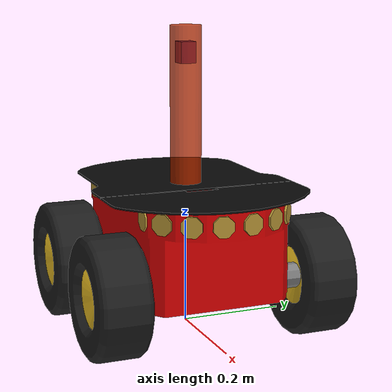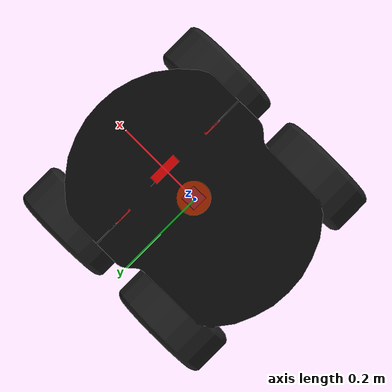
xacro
<?xml version="1.0"?>

<robot xmlns:sensor="http://playerstage.sourceforge.net/gazebo/xmlschema/#sensor"
       xmlns:controller="http://playerstage.sourceforge.net/gazebo/xmlschema/#controller"
       xmlns:interface="http://playerstage.sourceforge.net/gazebo/xmlschema/#interface"
       xmlns:xacro="http://ros.org/wiki/xacro"
name="pioneer3at">

    <xacro:property name="robot_namespace" value="$(arg robot_namespace)" />

    <!-- 惯性矩阵计算 -->
    <xacro:include filename="inertial_matrix.xacro" />
    <xacro:include filename="$(find p2os_urdf)/defs/pioneer3at_body.xacro"/>
    <!-- 给laser link添加3D雷达功能的实现 -->
    <!-- 给sensor_laser link添加2D激光雷达实现 -->
    <xacro:include filename="sensor_2D_laser.urdf.xacro" />

    <!-- Velodyne link -->
    <link name="velodyne">
        <!-- 定义 Velodyne 的形状和惯性等属性 -->
    </link>

    <!-- 父子关系 -->
    <joint name="support_to_velodyne" type="fixed">
        <parent link="support"/>
        <child link="velodyne"/>
        <!-- 设置子link相对于父link的位姿 -->
        <origin xyz="0 0 0.188" rpy="0 0 0"/>
    </joint>

    <xacro:p3at_front suffix="left" reflect="1"/>
    <xacro:p3at_front suffix="right" reflect="-1"/>
    <xacro:p3at_back suffix="left" reflect="1"/>
    <xacro:p3at_back suffix="right" reflect="-1"/>
    <xacro:p3at_gazebo_ext/>

</robot>

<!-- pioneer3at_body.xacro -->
<robot xmlns:sensor="http://playerstage.sourceforge.net/gazebo/xmlschema/#sensor"
       xmlns:controller="http://playerstage.sourceforge.net/gazebo/xmlschema/#controller"
       xmlns:interface="http://playerstage.sourceforge.net/gazebo/xmlschema/#interface"
       xmlns:xacro="http://ros.org/wiki/xacro"
>

<!-- Chassis -->
	<link name="base_link">
		<inertial>
			<mass value="10.0"/>
			<origin xyz="0 0 0.177"/>
			<inertia ixx="0.3338" ixy="0.0" ixz="0.0"
				 iyy="0.4783" iyz="0.0"
				 izz="0.3338"/>
		</inertial>
		<visual>
			<origin xyz="0 0 0.177" rpy="0 0 0"/>
			<geometry name="pioneer_geom">
				<mesh filename="package://p2os_urdf/meshes/p3at_meshes/chassis.stl"/>
			</geometry>
			<material name="ChassisRed">
				<color rgba="0.851 0.0 0.0 1.0"/>
			</material>
		</visual>
		<collision>
			<origin xyz="0 0 0.177" rpy="0 0 0"/>
				<geometry>
					<mesh filename="package://p2os_urdf/meshes/p3at_meshes/chassis.stl"/>
				</geometry>
		</collision>
	</link>
	<gazebo reference="base_link">
		<material value="Gazebo/Red"/>
	</gazebo>

<!-- Top -->
	<link name="top_plate">
		<inertial>
			<mass value="0.1"/>
			<origin xyz="-0.025 0 -0.223"/>
			<inertia ixx="1.0" ixy="0.0" ixz="0.0"
				 iyy="1.0" iyz="0.0"
 				izz="1.0"/>
		</inertial>
		<visual>
			<origin xyz="0 0 0" rpy="0 0 0"/>
			<geometry name="pioneer_geom">
				<mesh filename="package://p2os_urdf/meshes/p3at_meshes/top.stl"/>
			</geometry>
			<material name="TopBlack">
					<color rgba="0.038 0.038 0.038 1.0"/>
			</material>
		</visual>
		<collision>
			<origin xyz="0 0 0" rpy="0 0 0"/>
			<geometry>
				<box size="0 0 0"/>
			</geometry>
		</collision>
	</link>
	<gazebo reference="top_plate">
		<material value="Gazebo/Black"/>
	</gazebo>

	<joint name="base_top_joint" type="fixed">
		<origin xyz="0.003 0 0.274" rpy="0 0 0"/>
		<parent link="base_link"/>
		<child link="top_plate"/>
	</joint>

<!-- 3D lidar -->
    <!-- 雷达支架 -->
    <xacro:property name="support_length" value="0.30" /> <!-- 支架长度 -->
    <xacro:property name="support_radius" value="0.03" /> <!-- 支架半径 -->
    <xacro:property name="support_x" value="0.0" /> <!-- 支架安装的x坐标 -->
    <xacro:property name="support_y" value="0.0" /> <!-- 支架安装的y坐标 -->
    <xacro:property name="support_z" value="${support_length / 2}" /> <!-- 支架安装的z坐标:底盘高度 / 2 + 支架高度 / 2  -->
    <xacro:property name="support_m" value="0.02" /> <!-- 支架质量 -->

    <link name="support">
        <visual>
            <geometry>
                <cylinder radius="${support_radius}" length="${support_length}" />
            </geometry>
            <origin xyz="0.0 0.0 0.0" rpy="0.0 0.0 0.0" />
            <material name="red">
                <color rgba="0.8 0.2 0.0 0.8" />
            </material>
        </visual>

        <collision>
            <geometry>
                <cylinder radius="${support_radius}" length="${support_length}" />
            </geometry>
            <origin xyz="0.0 0.0 0.0" rpy="0.0 0.0 0.0" />
        </collision>

        <xacro:cylinder_inertial_matrix m="${support_m}" r="${support_radius}" h="${support_length}" />

    </link>

    <joint name="support2top_plate" type="fixed">
        <parent link="top_plate" />
        <child link="support" />
        <origin xyz="${support_x} ${support_y} ${support_z}" />
    </joint>

    <gazebo reference="support">
        <material>Gazebo/White</material>
    </gazebo>

    <!--2D Laser Scan-->
    <xacro:macro name="default_inertial" params="mass">
        <inertial>
          <mass value="${mass}"/>
          <inertia ixx="1.0" ixy="0.0" ixz="0.0" iyy="1.0" iyz="0.0" izz="1.0"/>
        </inertial>
      </xacro:macro>

    <material name="blue">
        <color rgba="0 0 0.8 1"/>
    </material>

    <xacro:property name="laser_size_x" value="0.03"/>
    <xacro:property name="laser_size_y" value="0.03"/>
    <xacro:property name="laser_size_z" value="0.04"/>
    <xacro:property name="laser_origin_x" value="0"/>
    <xacro:property name="laser_origin_y" value="0"/>
    <xacro:property name="laser_origin_z" value="${support_length / 3}"/>

    <link name="sensor_laser">
        <visual>
        <geometry>
            <box size="${laser_size_x} ${laser_size_y} ${laser_size_z}"/>
        </geometry>
        <material name="blue"/>
        </visual>
        <collision>
            <geometry>
                <box size="${laser_size_x} ${laser_size_y} ${laser_size_z}"/>
            </geometry>
        </collision>
        <xacro:default_inertial mass="0.02"/>
    </link>

    <joint name="sensor_laser_joint" type="fixed">
        <origin xyz="${laser_origin_x} ${laser_origin_y} ${laser_origin_z}" rpy="0 0 0" />
        <parent link="support"/>
        <child link="sensor_laser" />
    </joint>

<!-- Front + Back Sonar -->
	<link name="front_sonar">
		<inertial>
			<mass value="0.1"/>
			<origin xyz="0 0 0"/>
			<inertia ixx="1.0" ixy="0.0" ixz="0.0"
				 iyy="1.0" iyz="0.0" izz="1.0"/>
		</inertial>
		<visual>
			<origin xyz="0 0 0" rpy="0 0 0"/>
			<geometry name="pioneer_geom">
				<mesh filename="package://p2os_urdf/meshes/p3at_meshes/front_sonar.stl"/>
			</geometry>
			<material name="SonarYellow">
				<color rgba="0.715 0.583 0.210 1.0"/>
			</material>
		</visual>
		<collision>
			<origin xyz="0 0 0" rpy="0 0 0"/>
			<geometry>
				<box size="0 0 0"/>
			</geometry>
		</collision>
	</link>
	<gazebo reference="front_sonar">
		<material value="Gazebo/Yellow"/>
	</gazebo>

	<joint name="base_front_joint" type="fixed">
		<origin xyz="0.193 0 0.25" rpy="0 0 0"/>
		<parent link="base_link"/>
		<child link="front_sonar"/>
	</joint>

	<link name="back_sonar">
		<inertial>
			<mass value="0.1"/>
			<origin xyz="0 0 0"/>
			<inertia ixx="1.0" ixy="0.0" ixz="0.0"
				 iyy="1.0" iyz="0.0" izz="1.0"/>
		</inertial>
		<visual>
			<origin xyz="0 0 0" rpy="0 0 0"/>
			<geometry name="pioneer_geom">
				<mesh filename="package://p2os_urdf/meshes/p3at_meshes/back_sonar.stl"/>
			</geometry>
			<material name="SonarYellow">
				<color rgba="0.715 0.583 0.210 1.0"/>
			</material>
		</visual>
		<collision>
			<origin xyz="0 0 0" rpy="0 0 0"/>
			<geometry>
				<box size="0 0 0"/>
			</geometry>
		</collision>
	</link>
	<gazebo reference="back_sonar">
		<material value="Gazebo/Yellow"/>
	</gazebo>

	<joint name="base_back_joint" type="fixed">
		<origin xyz="-0.187 0 0.247" rpy="0 0 0"/>
		<parent link="base_link"/>
		<child link="back_sonar"/>
	</joint>

<!-- Front Axles + Wheels + Hubcaps -->
<xacro:macro name="p3at_front" params="suffix reflect">
	<link name="p3at_front_${suffix}_axle">
		<inertial>
			<mass value="0.1"/>
			<origin xyz="0 0 0"/>
			<inertia ixx="1.0" ixy="0.0" ixz="0.0"
				 iyy="1.0" iyz="0.0" izz="1.0"/>
  	 	</inertial>
	<visual>
		<origin xyz="0 0 0" rpy="0 0 0"/>
		<geometry name="pioneer_geom">
			<mesh filename="package://p2os_urdf/meshes/p3at_meshes/axle.stl"/>
		</geometry>
		<material name="AxleGrey">
			<color rgba="0.5 0.5 0.5 1"/>
		</material>
	</visual>
	<collision>
		<origin xyz="0 0 0" rpy="0 0 0"/>
		<geometry>
			<box size="0 0 0"/>
		</geometry>
	</collision>
	</link>
	<gazebo reference="p3at_front_${suffix}_axle">
		<material value="Gazebo/Grey"/>
	</gazebo>

	<joint name="base_front_${suffix}_axle_joint" type="fixed">
		<origin xyz="0.135 ${reflect*0.156} 0.111" rpy="0 0 0"/>
		<parent link="base_link"/>
		<child link="p3at_front_${suffix}_axle"/>
	</joint>

	<link name="p3at_front_${suffix}_hub">
		<inertial>
			<mass value="0.1"/>
			<origin xyz="0 0 0"/>
			<inertia ixx="1.0" ixy="0.0" ixz="0.0"
				 iyy="1.0" iyz="0.0" izz="1.0"/>
  	 	</inertial>
	<visual>
		<origin xyz="0 0 0" rpy="0 0 0"/>
		<geometry name="pioneer_geom">
			<mesh filename="package://p2os_urdf/meshes/p3at_meshes/${suffix}_hubcap.stl"/>
		</geometry>
		<material name="HubcapYellow">
			<color rgba="1.0 0.811 0.151 1.0"/>
		</material>
	</visual>
	<collision>
		<origin xyz="0 0 0" rpy="0 0 0"/>
		<geometry>
			<box size="0 0 0"/>
		</geometry>
	</collision>
	</link>
	<gazebo reference="p3at_front_${suffix}_hub">
		<material value="Gazebo/Yellow"/>
	</gazebo>

	<joint name="base_front_${suffix}_hub_joint" type="fixed">
		<origin xyz="0 ${reflect*0.041} 0" rpy="0 0 0"/>
		<parent link="p3at_front_${suffix}_axle"/>
		<child link="p3at_front_${suffix}_hub"/>
	</joint>

	<link name="p3at_front_${suffix}_wheel">
		<inertial>
			<mass value="0.5"/>
			<origin xyz="0 0 0"/>
			<inertia ixx="0.012411765597" ixy="0" ixz="0"
         iyy="0.015218160428" iyz="0" izz="0.011763977943"/>
      </inertial>
	<visual>
		<origin xyz="0 0 0" rpy="0 0 0"/>
		<geometry name="pioneer_geom">
			<mesh filename="package://p2os_urdf/meshes/p3at_meshes/wheel.stl"/>
		</geometry>
		<material name="WheelBlack">
			<color rgba="0.117 0.117 0.117 1"/>
		</material>
	</visual>
	<collision>
		<origin xyz="0 0 0" rpy="${-3.1415927/2} 0 0"/>
		<geometry>
	    <!--mesh filename="package://p2os_urdf/meshes/p3at_meshes/wheel.stl"/-->
	    <cylinder radius="0.111" length="0.075"/>
		</geometry>
	</collision>
	</link>
	<gazebo reference="p3at_front_${suffix}_wheel">
		<material value="Gazebo/Black"/>
	</gazebo>

	<joint name="p3at_front_${suffix}_wheel_joint" type="continuous">
  	<axis xyz="0 1 0"/>
    <anchor xyz="0 0 0"/>
    <limit effort="100" velocity="100" />
    <joint_properties damping="0.7"/>
		<origin xyz="0 0 0" rpy="0 0 0"/>
		<parent link="p3at_front_${suffix}_hub"/>
		<child link="p3at_front_${suffix}_wheel"/>
	</joint>
</xacro:macro>

<!-- Back Axles + Wheels + Hubcaps -->
<xacro:macro name="p3at_back" params="suffix reflect">
	<link name="p3at_back_${suffix}_axle">
		<inertial>
			<mass value="0.1"/>
			<origin xyz="0 0 0"/>
			<inertia ixx="1.0" ixy="0.0" ixz="0.0"
				 iyy="1.0" iyz="0.0" izz="1.0"/>
  	 	</inertial>
	<visual>
		<origin xyz="0 0 0" rpy="0 0 0"/>
		<geometry name="pioneer_geom">
			<mesh filename="package://p2os_urdf/meshes/p3at_meshes/axle.stl"/>
		</geometry>
		<material name="AxleGrey">
			<color rgba="0.5 0.5 0.5 1"/>
		</material>
	</visual>
	<collision>
		<origin xyz="0 0 0" rpy="0 0 0"/>
		<geometry>
			<mesh filename="package://p2os_urdf/meshes/p3at_meshes/axle.stl"/>
		</geometry>
	</collision>
	</link>
	<gazebo reference="p3at_back_${suffix}_axle">
		<material value="Gazebo/Grey"/>
	</gazebo>

	<joint name="bp3at_back_${suffix}_axle_joint" type="fixed">
		<origin xyz="-0.134 ${reflect*0.156} 0.111" rpy="0 0 0"/>
		<parent link="base_link"/>
		<child link="p3at_back_${suffix}_axle"/>
	</joint>

	<link name="p3at_back_${suffix}_hub">
		<inertial>
			<mass value="0.1"/>
			<origin xyz="0 0 0"/>
			<inertia ixx="1.0" ixy="0.0" ixz="0.0"
				 iyy="1.0" iyz="0.0" izz="1.0"/>
  	 	</inertial>
	<visual>
		<origin xyz="0 0 0" rpy="0 0 0"/>
		<geometry name="pioneer_geom">
			<mesh filename="package://p2os_urdf/meshes/p3at_meshes/${suffix}_hubcap.stl"/>
		</geometry>
		<material name="HubcapYellow"/>
	</visual>
	<collision>
		<origin xyz="0 0 0" rpy="0 0 0"/>
		<geometry>
			<mesh filename="package://p2os_urdf/meshes/p3at_meshes/${suffix}_hubcap.stl"/>
		</geometry>
	</collision>
	</link>
	<gazebo reference="p3at_back_${suffix}_hub">
		<material value="Gazebo/Yellow"/>
	</gazebo>

	<joint name="p3at_back_${suffix}_hub_joint" type="fixed">
		<origin xyz="-0 ${reflect*0.041} 0" rpy="0 0 0"/>
		<parent link="p3at_back_${suffix}_axle"/>
		<child link="p3at_back_${suffix}_hub"/>
	</joint>

	<link name="p3at_back_${suffix}_wheel">
		<inertial>
			<mass value="0.5"/>
			<origin xyz="0 0 0"/>
			<inertia ixx="0.012411765597" ixy="0" ixz="0"
         iyy="0.015218160428" iyz="0" izz="0.011763977943"/>
      </inertial>
	<visual>
		<origin xyz="0 0 0" rpy="0 0 0"/>
		<geometry name="pioneer_geom">
			<mesh filename="package://p2os_urdf/meshes/p3at_meshes/wheel.stl"/>
		</geometry>
		<material name="WheelBlack"/>
	</visual>
	<collision>
		<origin xyz="0 0 0" rpy="${-3.1415927/2} 0 0"/>
		<geometry>
	    <!--mesh filename="package://p2os_urdf/meshes/p3at_meshes/wheel.stl"/-->
	    <cylinder radius="0.111" length="0.075"/>
		</geometry>
	</collision>
	</link>
	<gazebo reference="p3at_back_${suffix}_wheel">
		<material value="Gazebo/Black"/>
	</gazebo>

	<joint name="p3at_back_${suffix}_wheel_joint" type="continuous">
	  <axis xyz="0 1 0"/>
    <anchor xyz="0 0 0"/>
    <limit effort="100" velocity="100" />
    <joint_properties damping="0.7"/>
		<origin xyz="0 0 0" rpy="0 0 0"/>
		<parent link="p3at_back_${suffix}_hub"/>
		<child link="p3at_back_${suffix}_wheel"/>
	</joint>

  <gazebo reference="p3at_back_${suffix}_wheel">
    <kp>1000000.0</kp> <!-- kp and kd for rubber -->
    <kd>100.0</kd>
    <mu1>10.0</mu1>
    <mu2>1.0</mu2>
    <fdir1>0 1 0</fdir1> <!-- is this correct? -->
    <maxVel>1.0</maxVel>
    <minDepth>0.00</minDepth>
  </gazebo>

  <gazebo reference="p3at_front_${suffix}_wheel">
    <kp>1000000.0</kp> <!-- kp and kd for rubber -->
    <kd>100.0</kd>
    <mu1>10.0</mu1>
    <mu2>1.0</mu2>
    <fdir1>0 1 0</fdir1> <!-- is this correct? -->
    <maxVel>1.0</maxVel>
    <minDepth>0.00</minDepth>
  </gazebo>

</xacro:macro>

<xacro:macro name="p3at_gazebo_ext">

<gazebo>
  <plugin name="skid_steer_drive_controller" filename="libgazebo_ros_skid_steer_drive.so">
    <updateRate>100.0</updateRate>
    <robotNamespace>${robot_namespace}</robotNamespace>
    <leftFrontJoint>p3at_front_left_wheel_joint</leftFrontJoint>
    <rightFrontJoint>p3at_front_right_wheel_joint</rightFrontJoint>
    <leftRearJoint>p3at_back_left_wheel_joint</leftRearJoint>
    <rightRearJoint>p3at_back_right_wheel_joint</rightRearJoint>
    <wheelSeparation>0.4</wheelSeparation>
    <wheelDiameter>0.215</wheelDiameter>
    <robotBaseFrame>${robot_namespace}/base_link</robotBaseFrame>
    <torque>200</torque>
    <topicName>cmd_vel</topicName>
    <odometryFrame>odom</odometryFrame>
    <odometryTopic>odom</odometryTopic> <!-- 里程计话题 -->
    <publishTf>1</publishTf>  <!--这两个参数决定了gazebo是否发布odom坐标 -->
    <broadcastTF>1</broadcastTF>
  </plugin>
</gazebo>

</xacro:macro>

</robot>
